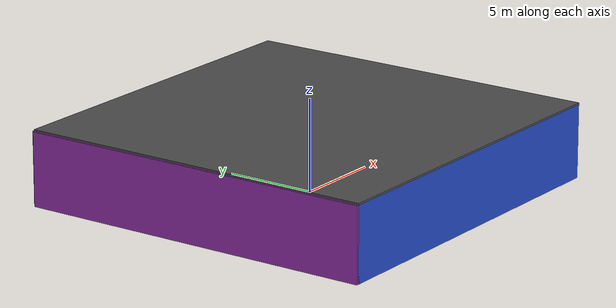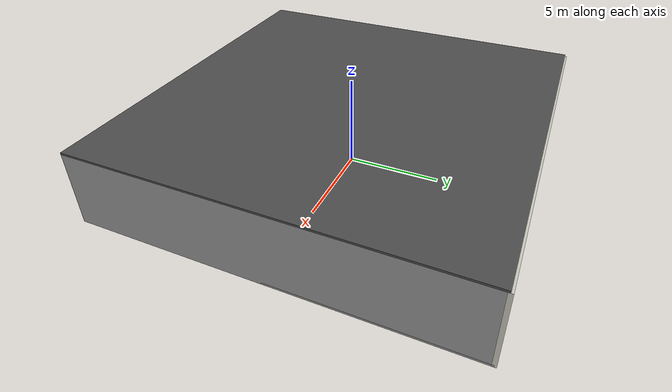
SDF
<sdf version="1.4">
 <world name="default">
  <physics type="ode">
   <max_step_size>0.001</max_step_size>
   <real_time_factor>1</real_time_factor>
   <real_time_update_rate>1000</real_time_update_rate>
   <gravity>0 0 -9.8</gravity>
  </physics>
  <scene><ambient>0.4 0.4 0.4 1</ambient><background>0.7 0.7 0.7 1</background><shadows>1</shadows></scene>
  <model name="Surrounding">
   <static>1</static>
   <link name="Ceiling">
    <collision name="Ceiling_Collision"><geometry><box><size>20 20 0.1</size></box></geometry></collision>
    <visual name="Ceiling_Visual">
     <geometry><box><size>20 20 0.1</size></box></geometry>
     <material>
      <script><uri>file://media/materials/scripts/gazebo.material</uri><name>Gazebo/DarkGrey</name></script>
     </material>
    </visual>
    <pose>0 0 4.05 0 0 0</pose>
   </link>
   <link name="Wall_South">
    <collision name="Wall_South_Collision">
     <geometry><box><size>20 0 4</size></box></geometry>
     <pose>0 0 2 0 -0 0</pose>
    </collision>
    <visual name="Wall_South_Visual">
     <pose>0 0 2 0 -0 0</pose>
     <geometry><box><size>20 0 4</size></box></geometry>
     <material>
      <script><uri>file://media/materials/scripts/gazebo.material</uri><name>Gazebo/BlueLaser</name></script>
     </material>
    </visual>
    <velocity_decay><linear>0</linear><angular>0</angular></velocity_decay>
    <pose>0 -10 0 0 -0 0</pose>
   </link>
   <link name="Wall_East">
    <collision name="Wall_21_Collision">
     <geometry><box><size>20 0 4</size></box></geometry>
     <pose>0 0 2 0 -0 0</pose>
    </collision>
    <visual name="Wall_21_Visual">
     <pose>0 0 2 0 -0 0</pose>
     <geometry><box><size>20 0 4</size></box></geometry>
     <material>
      <script><uri>file://media/materials/scripts/gazebo.material</uri><name>Gazebo/GreyGradientSky</name></script>
     </material>
    </visual>
    <velocity_decay><linear>0</linear><angular>0</angular></velocity_decay>
    <pose>10 0 0 0 -0 1.5708</pose>
   </link>
   <link name="Wall_North">
    <collision name="Wall_22_Collision">
     <geometry><box><size>20 0.2 4</size></box></geometry>
     <pose>0 0 2 0 -0 0</pose>
    </collision>
    <visual name="Wall_22_Visual">
     <pose>0 0 2 0 -0 0</pose>
     <geometry><box><size>20 0.2 4</size></box></geometry>
     <material>
      <script><uri>file://media/materials/scripts/gazebo.material</uri><name>Gazebo/PaintedWall</name></script>
     </material>
    </visual>
    <velocity_decay><linear>0</linear><angular>0</angular></velocity_decay>
    <pose>0 10 0 0 -0 0</pose>
   </link>
   <link name="Wall_West">
    <collision name="Wall_23_Collision">
     <geometry><box><size>20 0.2 4</size></box></geometry>
     <pose>0 0 2 0 -0 0</pose>
    </collision>
    <visual name="Wall_23_Visual">
     <pose>0 0 2 0 -0 0</pose>
     <geometry><box><size>20 0.2 4</size></box></geometry>
     <material>
      <script><uri>file://media/materials/scripts/gazebo.material</uri><name>Gazebo/PurpleGlow</name></script>
     </material>
    </visual>
    <velocity_decay><linear>0</linear><angular>0</angular></velocity_decay>
    <pose>-10 0 0 0 0 -1.5708</pose>
   </link>
   <link name="Ground_link">
    <collision name="collision">
     <pose>0 0 .05 0 -0 0</pose>
     <geometry><box><size>20 20 0.1</size></box></geometry>
    </collision>
    <visual name="visual">
     <pose>0 0 .05 0 -0 0</pose>
     <geometry><box><size>20 20 0.1</size></box></geometry>
     <material>
      <script><uri>file://media/materials/scripts/gazebo.material</uri><name>Gazebo/GreyGradientSky</name></script>
     </material>
    </visual>
   </link>
   <static>1</static>
  </model>
  <spherical_coordinates>
   <surface_model>EARTH_WGS84</surface_model>
   <latitude_deg>0</latitude_deg>
   <longitude_deg>0</longitude_deg>
   <elevation>0</elevation>
   <heading_deg>0</heading_deg>
  </spherical_coordinates>
  <light name="lightball_0" type="diffuse">
   <diffuse>0.8 0.8 0.8 1</diffuse>
   <specular>0.2 0.2 0.2 1</specular>
   <attenuation>
    <range>100</range>
    <constant>0.7</constant>
    <linear>0.01</linear>
    <quadratic>0.001</quadratic>
   </attenuation>
   <direction>-0.5 0.1 -0.9</direction>
   <pose>-4.31248620573 -2.99210781551 0.618048725075 0 0 0</pose>
  </light>
  <light name="lightball_1" type="diffuse">
   <diffuse>0.8 0.8 0.8 1</diffuse>
   <specular>0.2 0.2 0.2 1</specular>
   <attenuation>
    <range>100</range>
    <constant>0.7</constant>
    <linear>0.01</linear>
    <quadratic>0.001</quadratic>
   </attenuation>
   <direction>-0.5 0.1 -0.9</direction>
   <pose>-6.29366328804 -2.0637338753 2.51937251625 0 0 0</pose>
  </light>
  <light name="lightball_2" type="diffuse">
   <diffuse>0.8 0.8 0.8 1</diffuse>
   <specular>0.2 0.2 0.2 1</specular>
   <attenuation>
    <range>100</range>
    <constant>0.7</constant>
    <linear>0.01</linear>
    <quadratic>0.001</quadratic>
   </attenuation>
   <direction>-0.5 0.1 -0.9</direction>
   <pose>-5.93342957093 -5.90982426938 1.33963539733 0 0 0</pose>
  </light>
  <light name="lightball_3" type="diffuse">
   <diffuse>0.8 0.8 0.8 1</diffuse>
   <specular>0.2 0.2 0.2 1</specular>
   <attenuation>
    <range>100</range>
    <constant>0.7</constant>
    <linear>0.01</linear>
    <quadratic>0.001</quadratic>
   </attenuation>
   <direction>-0.5 0.1 -0.9</direction>
   <pose>9.79470535207 2.70981657682 1.40816878516 0 0 0</pose>
  </light>
  <light name="lightball_4" type="diffuse">
   <diffuse>0.8 0.8 0.8 1</diffuse>
   <specular>0.2 0.2 0.2 1</specular>
   <attenuation>
    <range>100</range>
    <constant>0.7</constant>
    <linear>0.01</linear>
    <quadratic>0.001</quadratic>
   </attenuation>
   <direction>-0.5 0.1 -0.9</direction>
   <pose>7.38979065427 5.34725228294 1.37082997814 0 0 0</pose>
  </light>
  <light name="lightball_5" type="diffuse">
   <diffuse>0.8 0.8 0.8 1</diffuse>
   <specular>0.2 0.2 0.2 1</specular>
   <attenuation>
    <range>100</range>
    <constant>0.7</constant>
    <linear>0.01</linear>
    <quadratic>0.001</quadratic>
   </attenuation>
   <direction>-0.5 0.1 -0.9</direction>
   <pose>-4.05422382199 -5.54422392845 2.44289347267 0 0 0</pose>
  </light>
  <light name="lightball_6" type="diffuse">
   <diffuse>0.8 0.8 0.8 1</diffuse>
   <specular>0.2 0.2 0.2 1</specular>
   <attenuation>
    <range>100</range>
    <constant>0.7</constant>
    <linear>0.01</linear>
    <quadratic>0.001</quadratic>
   </attenuation>
   <direction>-0.5 0.1 -0.9</direction>
   <pose>4.84859991684 -5.81220964677 0.802825288918 0 0 0</pose>
  </light>
  <light name="lightball_7" type="diffuse">
   <diffuse>0.8 0.8 0.8 1</diffuse>
   <specular>0.2 0.2 0.2 1</specular>
   <attenuation>
    <range>100</range>
    <constant>0.7</constant>
    <linear>0.01</linear>
    <quadratic>0.001</quadratic>
   </attenuation>
   <direction>-0.5 0.1 -0.9</direction>
   <pose>-1.31277772339 0.778401472734 1.018883971 0 0 0</pose>
  </light>
  <light name="lightball_8" type="diffuse">
   <diffuse>0.8 0.8 0.8 1</diffuse>
   <specular>0.2 0.2 0.2 1</specular>
   <attenuation>
    <range>100</range>
    <constant>0.7</constant>
    <linear>0.01</linear>
    <quadratic>0.001</quadratic>
   </attenuation>
   <direction>-0.5 0.1 -0.9</direction>
   <pose>3.38950371431 -9.06886192399 0.798680515983 0 0 0</pose>
  </light>
  <light name="lightball_9" type="diffuse">
   <diffuse>0.8 0.8 0.8 1</diffuse>
   <specular>0.2 0.2 0.2 1</specular>
   <attenuation>
    <range>100</range>
    <constant>0.7</constant>
    <linear>0.01</linear>
    <quadratic>0.001</quadratic>
   </attenuation>
   <direction>-0.5 0.1 -0.9</direction>
   <pose>3.89567987632 5.72623886717 2.43368324169 0 0 0</pose>
  </light>
  <light name="lightball_10" type="diffuse">
   <diffuse>0.8 0.8 0.8 1</diffuse>
   <specular>0.2 0.2 0.2 1</specular>
   <attenuation>
    <range>100</range>
    <constant>0.7</constant>
    <linear>0.01</linear>
    <quadratic>0.001</quadratic>
   </attenuation>
   <direction>-0.5 0.1 -0.9</direction>
   <pose>-4.98852505682 6.45641418509 2.07798788011 0 0 0</pose>
  </light>
  <light name="lightball_11" type="diffuse">
   <diffuse>0.8 0.8 0.8 1</diffuse>
   <specular>0.2 0.2 0.2 1</specular>
   <attenuation>
    <range>100</range>
    <constant>0.7</constant>
    <linear>0.01</linear>
    <quadratic>0.001</quadratic>
   </attenuation>
   <direction>-0.5 0.1 -0.9</direction>
   <pose>9.14586348783 1.99708421787 1.42914711513 0 0 0</pose>
  </light>
  <light name="lightball_12" type="diffuse">
   <diffuse>0.8 0.8 0.8 1</diffuse>
   <specular>0.2 0.2 0.2 1</specular>
   <attenuation>
    <range>100</range>
    <constant>0.7</constant>
    <linear>0.01</linear>
    <quadratic>0.001</quadratic>
   </attenuation>
   <direction>-0.5 0.1 -0.9</direction>
   <pose>6.68158138447 -4.45533492684 1.11688877322 0 0 0</pose>
  </light>
  <include><uri>model://table</uri><pose>-7.04451442765 -8.38582089021 0 0 0 2.13556576669</pose></include>
  <include>
   <uri>model://construction_cone</uri>
   <pose>-8.35013281263 -3.68153116378 0 0 0 2.78524179228</pose>
  </include>
  <include>
   <uri>model://construction_cone</uri>
   <pose>-8.40093867687 8.07368162667 0 0 0 0.611239959171</pose>
  </include>
  <include><uri>model://cabinet</uri><pose>-1.40781315313 -4.31919398316 0 0 0 0.924195720909</pose></include>
  <include>
   <uri>model://textured_shapes</uri>
   <pose>7.46212632463 -5.6977794969 0 0 0 1.813821667</pose>
  </include>
 </world>
</sdf>

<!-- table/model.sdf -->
<sdf version="1.5">
  <model name="table">
    <static>true</static>
    <link name="link">
      <collision name="surface">
        <pose>0 0 1.0 0 0 0</pose>
        <geometry>
          <box>
            <size>1.5 0.8 0.03</size>
          </box>
        </geometry>
        <surface>
          <friction>
            <ode>
              <mu>0.6</mu>
              <mu2>0.6</mu2>
            </ode>
          </friction>
        </surface>
      </collision>
      <visual name="visual1">
        <pose>0 0 1.0 0 0 0</pose>
        <geometry>
          <box>
            <size>1.5 0.8 0.03</size>
          </box>
        </geometry>
        <material>
          <script>
            <uri>model://media/materials/scripts/gazebo.material</uri>
            <name>Gazebo/Wood</name>
          </script>
        </material>
      </visual>
      <collision name="front_left_leg">
        <pose>0.68 0.38 0.5 0 0 0</pose>
        <geometry>
          <cylinder>
            <radius>0.02</radius>
            <length>1.0</length>
          </cylinder>
        </geometry>
      </collision>
      <visual name="front_left_leg">
        <pose>0.68 0.38 0.5 0 0 0</pose>
        <geometry>
          <cylinder>
            <radius>0.02</radius>
            <length>1.0</length>
          </cylinder>
        </geometry>
        <material>
          <script>
            <uri>model://media/materials/scripts/gazebo.material</uri>
            <name>Gazebo/Grey</name>
          </script>
        </material>
      </visual>
      <collision name="front_right_leg">
        <pose>0.68 -0.38 0.5 0 0 0</pose>
        <geometry>
          <cylinder>
            <radius>0.02</radius>
            <length>1.0</length>
          </cylinder>
        </geometry>
      </collision>
      <visual name="front_right_leg">
        <pose>0.68 -0.38 0.5 0 0 0</pose>
        <geometry>
          <cylinder>
            <radius>0.02</radius>
            <length>1.0</length>
          </cylinder>
        </geometry>
        <material>
          <script>
            <uri>model://media/materials/scripts/gazebo.material</uri>
            <name>Gazebo/Grey</name>
          </script>
        </material>
      </visual>
      <collision name="back_right_leg">
        <pose>-0.68 -0.38 0.5 0 0 0</pose>
        <geometry>
          <cylinder>
            <radius>0.02</radius>
            <length>1.0</length>
          </cylinder>
        </geometry>
      </collision>
      <visual name="back_right_leg">
        <pose>-0.68 -0.38 0.5 0 0 0</pose>
        <geometry>
          <cylinder>
            <radius>0.02</radius>
            <length>1.0</length>
          </cylinder>
        </geometry>
        <material>
          <script>
            <uri>model://media/materials/scripts/gazebo.material</uri>
            <name>Gazebo/Grey</name>
          </script>
        </material>
      </visual>
      <collision name="back_left_leg">
        <pose>-0.68 0.38 0.5 0 0 0</pose>
        <geometry>
          <cylinder>
            <radius>0.02</radius>
            <length>1.0</length>
          </cylinder>
        </geometry>
      </collision>
      <visual name="back_left_leg">
        <pose>-0.68 0.38 0.5 0 0 0</pose>
        <geometry>
          <cylinder>
            <radius>0.02</radius>
            <length>1.0</length>
          </cylinder>
        </geometry>
        <material>
          <script>
            <uri>model://media/materials/scripts/gazebo.material</uri>
            <name>Gazebo/Grey</name>
          </script>
        </material>
      </visual>
    </link>
  </model>
</sdf>

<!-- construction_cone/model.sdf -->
<sdf version="1.5">
  <model name="Construction Cone">
    <link name="link">
      <collision name="collision">
        <geometry>
          <mesh>
            <scale>10 10 10</scale>
            <uri>file://isr-testbed/construction_cone/meshes/construction_cone.dae</uri>
          </mesh>
        </geometry>
      </collision>
      <visual name="visual">
        <geometry>
          <mesh>
            <scale>10 10 10</scale>
            <uri>file://isr-testbed/construction_cone/meshes/construction_cone.dae</uri>
          </mesh>
        </geometry>
      </visual>
    </link>
  </model>
</sdf>

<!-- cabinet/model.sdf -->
<sdf version="1.5">
  <model name="cabinet">
    <static>true</static>
    <link name="cabinet_bottom_plate">
      <inertial>
        <pose>0 0 -1 0 0 0</pose>
        <inertia>
          <ixx>2.050000</ixx>
          <ixy>0</ixy>
          <ixz>0</ixz>
          <iyy>2.050000</iyy>
          <iyz>0</iyz>
          <izz>2.050000</izz>
        </inertia>
        <mass>25.000000</mass>
      </inertial>
      <collision name="cabinet_bottom_plate_geom">
        <pose>0 0 0.010000 0 0 0</pose>
        <geometry>
          <box>
            <size>0.450000 0.450000 0.020000</size>
          </box>
        </geometry>
      </collision>
      <visual name="cabinet_bottom_plate_geom_visual">
        <pose>0 0 0.010000 0 0 0</pose>
        <geometry>
          <box>
            <size>0.450000 0.450000 0.020000</size>
          </box>
        </geometry>
        <material>
          <script>
            <uri>model://media/materials/scripts/gazebo.material</uri>
            <name>Gazebo/Wood</name>
          </script>
        </material>
      </visual>
      <collision name="cabinet_bottom_plate_geom_cabinet_back_plate">
        <pose>0.235000 0 0.510000 0 0 0</pose>
        <geometry>
          <box>
            <size>0.020000 0.450000 1.020000</size>
          </box>
        </geometry>
      </collision>
      <visual name="cabinet_bottom_plate_geom_cabinet_back_plate_visual">
        <pose>0.235000 0 0.510000 0 0 0</pose>
        <geometry>
          <box>
            <size>0.020000 0.450000 1.020000</size>
          </box>
        </geometry>
        <material>
          <script>
            <uri>model://media/materials/scripts/gazebo.material</uri>
            <name>Gazebo/Wood</name>
          </script>
        </material>
      </visual>
      <collision name="cabinet_bottom_plate_geom_cabinet_left_plate">
        <pose>0 0.235000 0.510000 0 0 0</pose>
        <geometry>
          <box>
            <size>0.450000 0.020000 1.020000</size>
          </box>
        </geometry>
      </collision>
      <visual name="cabinet_bottom_plate_geom_cabinet_left_plate_visual">
        <pose>0 0.235000 0.510000 0 0 0</pose>
        <geometry>
          <box>
            <size>0.450000 0.020000 1.020000</size>
          </box>
        </geometry>
        <material>
          <script>
            <uri>model://media/materials/scripts/gazebo.material</uri>
            <name>Gazebo/Wood</name>
          </script>
        </material>
      </visual>
      <collision name="cabinet_bottom_plate_geom_cabinet_middle_plate">
        <pose>0 0 0.510000 0 0 0</pose>
        <geometry>
          <box>
            <size>0.450000 0.450000 0.020000</size>
          </box>
        </geometry>
      </collision>
      <visual name="cabinet_bottom_plate_geom_cabinet_middle_plate_visual">
        <pose>0 0 0.510000 0 0 0</pose>
        <geometry>
          <box>
            <size>0.450000 0.450000 0.020000</size>
          </box>
        </geometry>
        <material>
          <script>
            <uri>model://media/materials/scripts/gazebo.material</uri>
            <name>Gazebo/Wood</name>
          </script>
        </material>
      </visual>
      <collision name="cabinet_bottom_plate_geom_cabinet_right_plate">
        <pose>0 -0.235000 0.510000 0 0 0</pose>
        <geometry>
          <box>
            <size>0.450000 0.020000 1.020000</size>
          </box>
        </geometry>
      </collision>
      <visual name="cabinet_bottom_plate_geom_cabinet_right_plate_visual">
        <pose>0 -0.235000 0.510000 0 0 0</pose>
        <geometry>
          <box>
            <size>0.450000 0.020000 1.020000</size>
          </box>
        </geometry>
        <material>
          <script>
            <uri>model://media/materials/scripts/gazebo.material</uri>
            <name>Gazebo/Wood</name>
          </script>
        </material>
      </visual>
      <collision name="cabinet_bottom_plate_geom_cabinet_top_plate">
        <pose>0 0 1.010000 0 0 0</pose>
        <geometry>
          <box>
            <size>0.450000 0.450000 0.020000</size>
          </box>
        </geometry>
      </collision>
      <visual name="cabinet_bottom_plate_geom_cabinet_top_plate_visual">
        <pose>0 0 1.010000 0 0 0</pose>
        <geometry>
          <box>
            <size>0.450000 0.450000 0.020000</size>
          </box>
        </geometry>
        <material>
          <script>
            <uri>model://media/materials/scripts/gazebo.material</uri>
            <name>Gazebo/Wood</name>
          </script>
        </material>
      </visual>
    </link>
  </model>
</sdf>

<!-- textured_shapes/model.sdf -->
<sdf version="1.6">
  <model name="textured_shapes">
    <pose>0 0 0.5 0 0 0</pose>
    <link name="box">
      <pose>0 -1.5 0 0 0 0</pose>
      <collision name="collision">
        <geometry>
          <box>
            <size>1 1 1</size>
          </box>
        </geometry>
      </collision>
      <visual name="visual">
        <geometry>
          <box>
            <size>1 1 1</size>
          </box>
        </geometry>
        <material>
          <script>
            <uri>model://../model_source/models/textured_shapes/materials/scripts</uri>
            <uri>model://../model_source/models/textured_shapes/materials/textures</uri>
            <name>TexturedShape/Squares</name>
          </script>
        </material>
      </visual>
    </link>
    <link name="sphere">
      <collision name="collision">
        <geometry>
          <sphere>
            <radius>0.5</radius>
          </sphere>
        </geometry>
      </collision>
      <visual name="visual">
        <geometry>
          <sphere>
            <radius>0.5</radius>
          </sphere>
        </geometry>
        <material>
          <script>
            <uri>model://../model_source/models/textured_shapes/materials/scripts</uri>
            <uri>model://../model_source/models/textured_shapes/materials/textures</uri>
            <name>TexturedShape/Squares</name>
          </script>
        </material>
      </visual>
    </link>
    <link name="cylinder">
      <pose>0 1.5 0 0 0 0</pose>
      <collision name="collision">
        <geometry>
          <cylinder>
            <radius>0.5</radius>
            <length>1</length>
          </cylinder>
        </geometry>
      </collision>
      <visual name="visual">
        <geometry>
          <cylinder>
            <radius>0.5</radius>
            <length>1</length>
          </cylinder>
        </geometry>
        <material>
          <script>
            <uri>model://../model_source/models/textured_shapes/materials/scripts</uri>
            <uri>model://../model_source/models/textured_shapes/materials/textures</uri>
            <name>TexturedShape/Squares</name>
          </script>
        </material>
      </visual>
    </link>
  </model>
</sdf>
